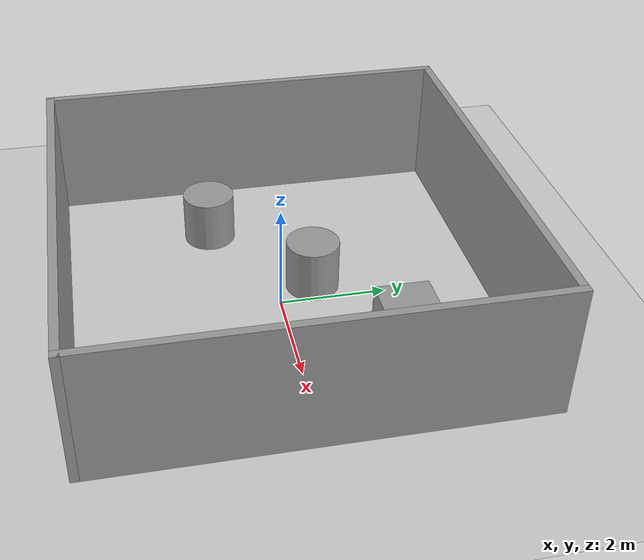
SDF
<sdf version="1.6">
 <world name="default">
  <light name="sun" type="directional">
   <pose>0 0 10 0 -0 0</pose>
   <diffuse>0.8 0.8 0.8 1</diffuse>
   <specular>0.2 0.2 0.2 1</specular>
   <attenuation>
    <range>1000</range>
    <constant>0.9</constant>
    <linear>0.01</linear>
    <quadratic>0.001</quadratic>
   </attenuation>
   <direction>-0.5 0.1 -0.9</direction>
  </light>
  <model name="ground_plane">
   <static>1</static>
   <link name="link">
    <collision name="collision">
     <geometry><plane><normal>0 0 1</normal><size>100 100</size></plane></geometry>
     <surface>
      <contact><collide_bitmask>65535</collide_bitmask></contact>
      <friction><ode><mu>100</mu><mu2>50</mu2></ode></friction>
     </surface>
    </collision>
    <visual name="visual">
     <cast_shadows>0</cast_shadows>
     <geometry><plane><normal>0 0 1</normal><size>100 100</size></plane></geometry>
     <material>
      <script><uri>file://media/materials/scripts/gazebo.material</uri><name>Gazebo/Grey</name></script>
     </material>
    </visual>
   </link>
  </model>
  <gravity>0 0 -9.8</gravity>
  <magnetic_field>6e-06 2.3e-05 -4.2e-05</magnetic_field>
  <atmosphere type="adiabatic"/>
  <physics name="default_physics" default="0" type="ode">
   <max_step_size>0.001</max_step_size>
   <real_time_factor>1</real_time_factor>
   <real_time_update_rate>1000</real_time_update_rate>
  </physics>
  <scene><ambient>0.4 0.4 0.4 1</ambient><background>0.7 0.7 0.7 1</background><shadows>1</shadows></scene>
  <audio><device>default</device></audio>
  <spherical_coordinates>
   <surface_model>EARTH_WGS84</surface_model>
   <latitude_deg>0</latitude_deg>
   <longitude_deg>0</longitude_deg>
   <elevation>0</elevation>
   <heading_deg>0</heading_deg>
  </spherical_coordinates>
  <model name="gray_walls_0">
   <pose>-0.282149 0.037175 0 0 -0 0</pose>
   <link name="Wall_11">
    <collision name="Wall_11_Collision">
     <geometry><box><size>8 0.15 2.5</size></box></geometry>
     <pose>0 0 1.25 0 -0 0</pose>
    </collision>
    <visual name="Wall_11_Visual">
     <pose>0 0 1.25 0 -0 0</pose>
     <geometry><box><size>8 0.15 2.5</size></box></geometry>
     <material>
      <script><uri>file://media/materials/scripts/gazebo.material</uri><name>Gazebo/Grey</name></script>
      <ambient>1 1 1 1</ambient>
     </material>
     <meta><layer>0</layer></meta>
    </visual>
    <pose>-0 3.925 0 0 -0 0</pose>
   </link>
   <link name="Wall_12">
    <collision name="Wall_12_Collision">
     <geometry><box><size>8 0.15 2.5</size></box></geometry>
     <pose>0 0 1.25 0 -0 0</pose>
    </collision>
    <visual name="Wall_12_Visual">
     <pose>0 0 1.25 0 -0 0</pose>
     <geometry><box><size>8 0.15 2.5</size></box></geometry>
     <material>
      <script><uri>file://media/materials/scripts/gazebo.material</uri><name>Gazebo/Grey</name></script>
      <ambient>1 1 1 1</ambient>
     </material>
     <meta><layer>0</layer></meta>
    </visual>
    <pose>3.925 0 0 0 -0 -1.5708</pose>
   </link>
   <link name="Wall_13">
    <collision name="Wall_13_Collision">
     <geometry><box><size>8 0.15 2.5</size></box></geometry>
     <pose>0 0 1.25 0 -0 0</pose>
    </collision>
    <visual name="Wall_13_Visual">
     <pose>0 0 1.25 0 -0 0</pose>
     <geometry><box><size>8 0.15 2.5</size></box></geometry>
     <material>
      <script><uri>file://media/materials/scripts/gazebo.material</uri><name>Gazebo/Grey</name></script>
      <ambient>1 1 1 1</ambient>
     </material>
     <meta><layer>0</layer></meta>
    </visual>
    <pose>-0 -3.925 0 0 -0 3.14159</pose>
   </link>
   <link name="Wall_9">
    <collision name="Wall_9_Collision">
     <geometry><box><size>8 0.15 2.5</size></box></geometry>
     <pose>0 0 1.25 0 -0 0</pose>
    </collision>
    <visual name="Wall_9_Visual">
     <pose>0 0 1.25 0 -0 0</pose>
     <geometry><box><size>8 0.15 2.5</size></box></geometry>
     <material>
      <script><uri>file://media/materials/scripts/gazebo.material</uri><name>Gazebo/Grey</name></script>
      <ambient>1 1 1 1</ambient>
     </material>
     <meta><layer>0</layer></meta>
    </visual>
    <pose>-3.925 0 0 0 -0 -1.5708</pose>
   </link>
   <static>1</static>
  </model>
  <model name="unit_cylinder">
   <pose>-2.44688 -0.996254 0.499997 3e-06 4e-06 -0</pose>
   <link name="link">
    <inertial>
     <mass>1</mass>
     <inertia><ixx>0.145833</ixx><ixy>0</ixy><ixz>0</ixz><iyy>0.145833</iyy><iyz>0</iyz><izz>0.125</izz></inertia>
    </inertial>
    <collision name="collision">
     <geometry><cylinder><radius>0.5</radius><length>1</length></cylinder></geometry>
    </collision>
    <visual name="visual">
     <geometry><cylinder><radius>0.5</radius><length>1</length></cylinder></geometry>
     <material>
      <script><name>Gazebo/Grey</name><uri>file://media/materials/scripts/gazebo.material</uri></script>
     </material>
    </visual>
   </link>
  </model>
  <model name="unit_cylinder_0">
   <pose>-0.434332 0.695712 0.499993 -3e-06 -4e-06 -0</pose>
   <link name="link">
    <inertial>
     <mass>1</mass>
     <inertia><ixx>0.145833</ixx><ixy>0</ixy><ixz>0</ixz><iyy>0.145833</iyy><iyz>0</iyz><izz>0.125</izz></inertia>
    </inertial>
    <collision name="collision">
     <geometry><cylinder><radius>0.5</radius><length>1</length></cylinder></geometry>
    </collision>
    <visual name="visual">
     <geometry><cylinder><radius>0.5</radius><length>1</length></cylinder></geometry>
     <material>
      <script><name>Gazebo/Grey</name><uri>file://media/materials/scripts/gazebo.material</uri></script>
     </material>
    </visual>
   </link>
  </model>
  <model name="unit_box">
   <pose>1.62359 1.93845 0.5 0 -0 0</pose>
   <link name="link">
    <inertial>
     <mass>1</mass>
     <inertia>
      <ixx>0.166667</ixx>
      <ixy>0</ixy>
      <ixz>0</ixz>
      <iyy>0.166667</iyy>
      <iyz>0</iyz>
      <izz>0.166667</izz>
     </inertia>
    </inertial>
    <collision name="collision"><geometry><box><size>1 1 1</size></box></geometry></collision>
    <visual name="visual">
     <geometry><box><size>1 1 1</size></box></geometry>
     <material>
      <script><name>Gazebo/Grey</name><uri>file://media/materials/scripts/gazebo.material</uri></script>
     </material>
    </visual>
   </link>
  </model>
 </world>
</sdf>
